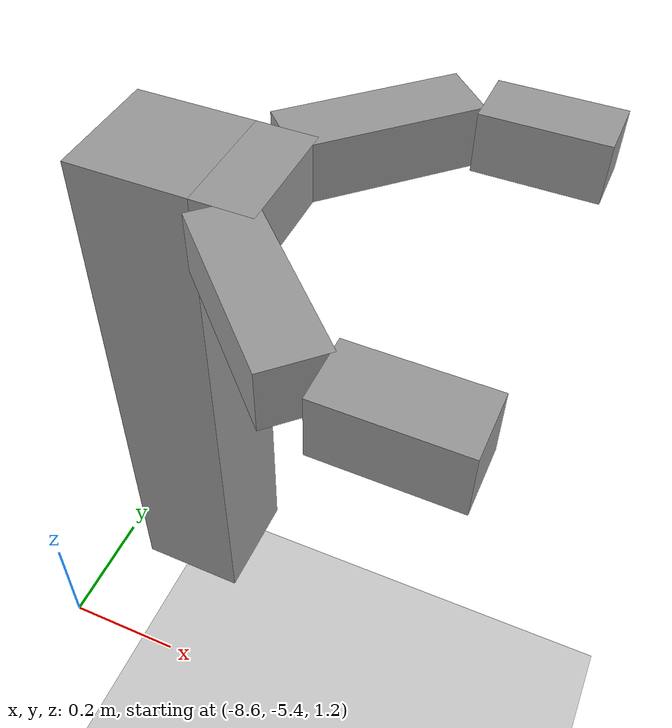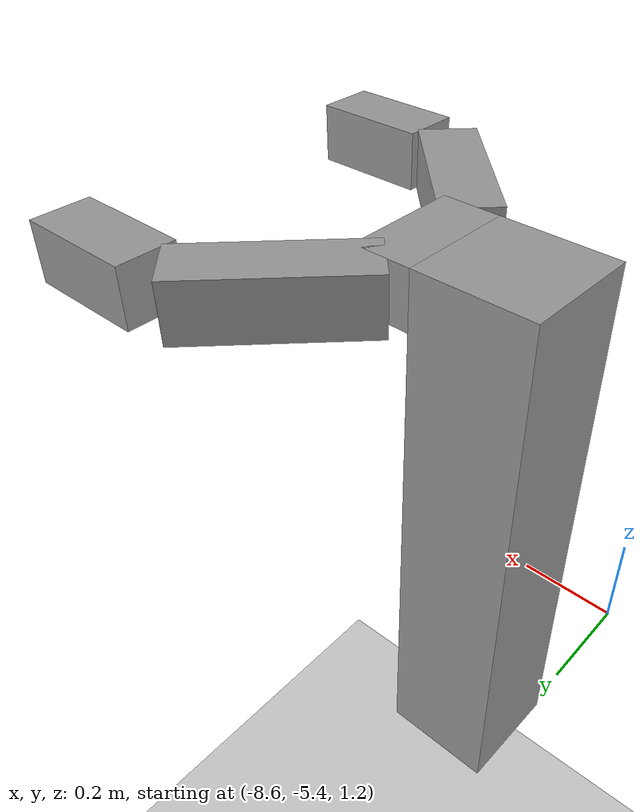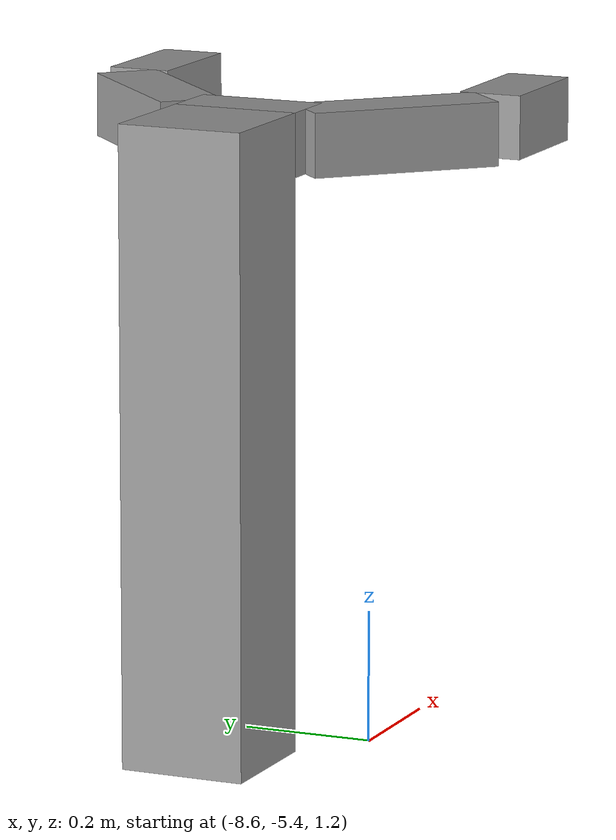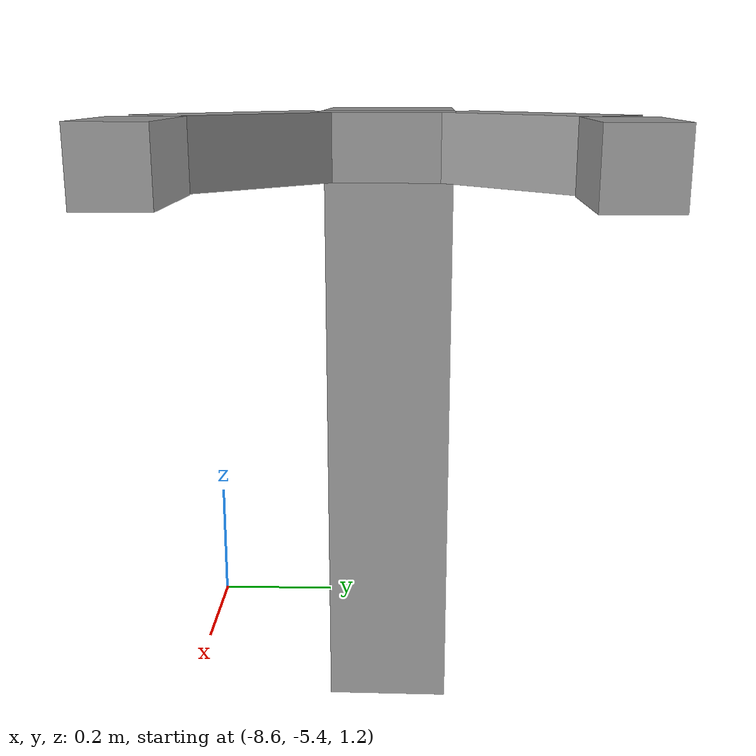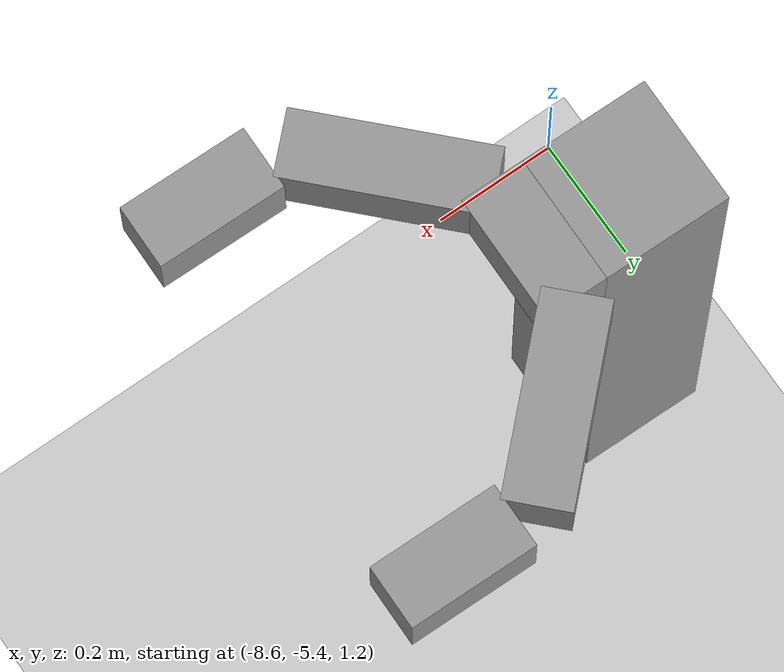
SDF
<sdf version="1.6">
 <world name="default">
  <model name="ground_plane">
   <static>1</static>
   <link name="link">
    <collision name="collision">
     <geometry><plane><normal>0 0 1</normal><size>100 100</size></plane></geometry>
     <surface>
      <contact><collide_bitmask>65535</collide_bitmask></contact>
      <friction><ode><mu>100</mu><mu2>50</mu2></ode></friction>
     </surface>
    </collision>
    <visual name="visual">
     <cast_shadows>0</cast_shadows>
     <geometry><plane><normal>0 0 1</normal><size>100 100</size></plane></geometry>
     <material>
      <script><uri>file://media/materials/scripts/gazebo.material</uri><name>Gazebo/Grey</name></script>
     </material>
    </visual>
   </link>
  </model>
  <model name="RobotGripper">
   <link name="link_0">
    <pose>-0.270333 0 -0.375 0 -0 0</pose>
    <inertial>
     <mass>1</mass>
     <inertia>
      <ixx>0.166667</ixx>
      <ixy>0</ixy>
      <ixz>0</ixz>
      <iyy>0.166667</iyy>
      <iyz>0</iyz>
      <izz>0.166667</izz>
     </inertia>
     <pose>0 0 -0.5 0 -0 0</pose>
    </inertial>
    <visual name="visual">
     <geometry><box><size>0.2 0.2 1</size></box></geometry>
     <material>
      <lighting>1</lighting>
      <script><uri>file://media/materials/scripts/gazebo.material</uri><name>Gazebo/Grey</name></script>
      <shader type="pixel"><normal_map>__default__</normal_map></shader>
      <ambient>0.3 0.3 0.3 1</ambient>
      <diffuse>0.7 0.7 0.7 1</diffuse>
      <specular>0.01 0.01 0.01 1</specular>
      <emissive>0 0 0 1</emissive>
     </material>
    </visual>
    <collision name="collision">
     <geometry><box><size>0.2 0.2 1</size></box></geometry>
     <surface>
      <friction>
       <ode><mu>1</mu><mu2>1</mu2><fdir1>0 0 0</fdir1><slip1>0</slip1><slip2>0</slip2></ode>
       <torsional>
        <coefficient>1</coefficient>
        <patch_radius>0</patch_radius>
        <surface_radius>0</surface_radius>
        <use_patch_radius>1</use_patch_radius>
        <ode><slip>0</slip></ode>
       </torsional>
      </friction>
      <bounce><restitution_coefficient>0</restitution_coefficient><threshold>1e+06</threshold></bounce>
      <contact>
       <collide_without_contact>0</collide_without_contact>
       <collide_without_contact_bitmask>1</collide_without_contact_bitmask>
       <collide_bitmask>1</collide_bitmask>
       <ode>
        <soft_cfm>0</soft_cfm>
        <soft_erp>0.2</soft_erp>
        <kp>1e+13</kp>
        <kd>1</kd>
        <max_vel>0.01</max_vel>
        <min_depth>0</min_depth>
       </ode>
       <bullet>
        <split_impulse>1</split_impulse>
        <split_impulse_penetration_threshold>-0.01</split_impulse_penetration_threshold>
        <soft_cfm>0</soft_cfm>
        <soft_erp>0.2</soft_erp>
        <kp>1e+13</kp>
        <kd>1</kd>
       </bullet>
      </contact>
     </surface>
    </collision>
   </link>
   <link name="link_1">
    <pose>-0.120333 0 0.075 0 -0 0</pose>
    <inertial>
     <mass>1</mass>
     <inertia>
      <ixx>0.166667</ixx>
      <ixy>0</ixy>
      <ixz>0</ixz>
      <iyy>0.166667</iyy>
      <iyz>0</iyz>
      <izz>0.166667</izz>
     </inertia>
    </inertial>
    <visual name="visual">
     <geometry><box><size>0.1 0.2 0.1</size></box></geometry>
     <material>
      <lighting>1</lighting>
      <script><uri>file://media/materials/scripts/gazebo.material</uri><name>Gazebo/Grey</name></script>
      <shader type="pixel"><normal_map>__default__</normal_map></shader>
      <ambient>0.3 0.3 0.3 1</ambient>
      <diffuse>0.7 0.7 0.7 1</diffuse>
      <specular>0.01 0.01 0.01 1</specular>
      <emissive>0 0 0 1</emissive>
     </material>
    </visual>
    <collision name="collision">
     <geometry><box><size>0.1 0.2 0.1</size></box></geometry>
     <surface>
      <friction>
       <ode><mu>1</mu><mu2>1</mu2><fdir1>0 0 0</fdir1><slip1>0</slip1><slip2>0</slip2></ode>
       <torsional>
        <coefficient>1</coefficient>
        <patch_radius>0</patch_radius>
        <surface_radius>0</surface_radius>
        <use_patch_radius>1</use_patch_radius>
        <ode><slip>0</slip></ode>
       </torsional>
      </friction>
      <bounce><restitution_coefficient>0</restitution_coefficient><threshold>1e+06</threshold></bounce>
      <contact>
       <collide_without_contact>0</collide_without_contact>
       <collide_without_contact_bitmask>1</collide_without_contact_bitmask>
       <collide_bitmask>1</collide_bitmask>
       <ode>
        <soft_cfm>0</soft_cfm>
        <soft_erp>0.2</soft_erp>
        <kp>1e+13</kp>
        <kd>1</kd>
        <max_vel>0.01</max_vel>
        <min_depth>0</min_depth>
       </ode>
       <bullet>
        <split_impulse>1</split_impulse>
        <split_impulse_penetration_threshold>-0.01</split_impulse_penetration_threshold>
        <soft_cfm>0</soft_cfm>
        <soft_erp>0.2</soft_erp>
        <kp>1e+13</kp>
        <kd>1</kd>
       </bullet>
      </contact>
     </surface>
    </collision>
   </link>
   <link name="link_2">
    <pose>-0.020333 0.2 0.075 0 0 -0.78539</pose>
    <inertial>
     <mass>1</mass>
     <inertia>
      <ixx>0.166667</ixx>
      <ixy>0</ixy>
      <ixz>0</ixz>
      <iyy>0.166667</iyy>
      <iyz>0</iyz>
      <izz>0.166667</izz>
     </inertia>
    </inertial>
    <visual name="visual">
     <geometry><box><size>0.1 0.3 0.1</size></box></geometry>
     <material>
      <lighting>1</lighting>
      <script><uri>file://media/materials/scripts/gazebo.material</uri><name>Gazebo/Grey</name></script>
      <shader type="pixel"><normal_map>__default__</normal_map></shader>
      <ambient>0.3 0.3 0.3 1</ambient>
      <diffuse>0.7 0.7 0.7 1</diffuse>
      <specular>0.01 0.01 0.01 1</specular>
      <emissive>0 0 0 1</emissive>
     </material>
    </visual>
    <collision name="collision">
     <geometry><box><size>0.1 0.3 0.1</size></box></geometry>
     <surface>
      <friction>
       <ode><mu>1</mu><mu2>1</mu2><fdir1>0 0 0</fdir1><slip1>0</slip1><slip2>0</slip2></ode>
       <torsional>
        <coefficient>1</coefficient>
        <patch_radius>0</patch_radius>
        <surface_radius>0</surface_radius>
        <use_patch_radius>1</use_patch_radius>
        <ode><slip>0</slip></ode>
       </torsional>
      </friction>
      <bounce><restitution_coefficient>0</restitution_coefficient><threshold>1e+06</threshold></bounce>
      <contact>
       <collide_without_contact>0</collide_without_contact>
       <collide_without_contact_bitmask>1</collide_without_contact_bitmask>
       <collide_bitmask>1</collide_bitmask>
       <ode>
        <soft_cfm>0</soft_cfm>
        <soft_erp>0.2</soft_erp>
        <kp>1e+13</kp>
        <kd>1</kd>
        <max_vel>0.01</max_vel>
        <min_depth>0</min_depth>
       </ode>
       <bullet>
        <split_impulse>1</split_impulse>
        <split_impulse_penetration_threshold>-0.01</split_impulse_penetration_threshold>
        <soft_cfm>0</soft_cfm>
        <soft_erp>0.2</soft_erp>
        <kp>1e+13</kp>
        <kd>1</kd>
       </bullet>
      </contact>
     </surface>
    </collision>
   </link>
   <link name="link_2_clone">
    <pose>-0.020333 -0.2 0.075 0 -0 0.78539</pose>
    <inertial>
     <mass>1</mass>
     <inertia>
      <ixx>0.166667</ixx>
      <ixy>0</ixy>
      <ixz>0</ixz>
      <iyy>0.166667</iyy>
      <iyz>0</iyz>
      <izz>0.166667</izz>
     </inertia>
    </inertial>
    <visual name="visual">
     <geometry><box><size>0.1 0.3 0.1</size></box></geometry>
     <material>
      <lighting>1</lighting>
      <script><uri>file://media/materials/scripts/gazebo.material</uri><name>Gazebo/Grey</name></script>
      <shader type="pixel"><normal_map>__default__</normal_map></shader>
      <ambient>0.3 0.3 0.3 1</ambient>
      <diffuse>0.7 0.7 0.7 1</diffuse>
      <specular>0.01 0.01 0.01 1</specular>
      <emissive>0 0 0 1</emissive>
     </material>
    </visual>
    <collision name="collision">
     <geometry><box><size>0.1 0.3 0.1</size></box></geometry>
     <surface>
      <friction>
       <ode><mu>1</mu><mu2>1</mu2><fdir1>0 0 0</fdir1><slip1>0</slip1><slip2>0</slip2></ode>
       <torsional>
        <coefficient>1</coefficient>
        <patch_radius>0</patch_radius>
        <surface_radius>0</surface_radius>
        <use_patch_radius>1</use_patch_radius>
        <ode><slip>0</slip></ode>
       </torsional>
      </friction>
      <bounce><restitution_coefficient>0</restitution_coefficient><threshold>1e+06</threshold></bounce>
      <contact>
       <collide_without_contact>0</collide_without_contact>
       <collide_without_contact_bitmask>1</collide_without_contact_bitmask>
       <collide_bitmask>1</collide_bitmask>
       <ode>
        <soft_cfm>0</soft_cfm>
        <soft_erp>0.2</soft_erp>
        <kp>1e+13</kp>
        <kd>1</kd>
        <max_vel>0.01</max_vel>
        <min_depth>0</min_depth>
       </ode>
       <bullet>
        <split_impulse>1</split_impulse>
        <split_impulse_penetration_threshold>-0.01</split_impulse_penetration_threshold>
        <soft_cfm>0</soft_cfm>
        <soft_erp>0.2</soft_erp>
        <kp>1e+13</kp>
        <kd>1</kd>
       </bullet>
      </contact>
     </surface>
    </collision>
   </link>
   <link name="link_3">
    <pose>0.215667 0.3 0.075 0 -0 1.5707</pose>
    <inertial>
     <mass>1</mass>
     <inertia>
      <ixx>0.166667</ixx>
      <ixy>0</ixy>
      <ixz>0</ixz>
      <iyy>0.166667</iyy>
      <iyz>0</iyz>
      <izz>0.166667</izz>
     </inertia>
    </inertial>
    <visual name="visual">
     <geometry><box><size>0.1 0.2 0.1</size></box></geometry>
     <material>
      <lighting>1</lighting>
      <script><uri>file://media/materials/scripts/gazebo.material</uri><name>Gazebo/Grey</name></script>
      <shader type="pixel"><normal_map>__default__</normal_map></shader>
      <ambient>0.3 0.3 0.3 1</ambient>
      <diffuse>0.7 0.7 0.7 1</diffuse>
      <specular>0.01 0.01 0.01 1</specular>
      <emissive>0 0 0 1</emissive>
     </material>
    </visual>
    <collision name="collision">
     <geometry><box><size>0.1 0.2 0.1</size></box></geometry>
     <surface>
      <friction>
       <ode><mu>1</mu><mu2>1</mu2><fdir1>0 0 0</fdir1><slip1>0</slip1><slip2>0</slip2></ode>
       <torsional>
        <coefficient>1</coefficient>
        <patch_radius>0</patch_radius>
        <surface_radius>0</surface_radius>
        <use_patch_radius>1</use_patch_radius>
        <ode><slip>0</slip></ode>
       </torsional>
      </friction>
      <bounce><restitution_coefficient>0</restitution_coefficient><threshold>1e+06</threshold></bounce>
      <contact>
       <collide_without_contact>0</collide_without_contact>
       <collide_without_contact_bitmask>1</collide_without_contact_bitmask>
       <collide_bitmask>1</collide_bitmask>
       <ode>
        <soft_cfm>0</soft_cfm>
        <soft_erp>0.2</soft_erp>
        <kp>1e+13</kp>
        <kd>1</kd>
        <max_vel>0.01</max_vel>
        <min_depth>0</min_depth>
       </ode>
       <bullet>
        <split_impulse>1</split_impulse>
        <split_impulse_penetration_threshold>-0.01</split_impulse_penetration_threshold>
        <soft_cfm>0</soft_cfm>
        <soft_erp>0.2</soft_erp>
        <kp>1e+13</kp>
        <kd>1</kd>
       </bullet>
      </contact>
     </surface>
    </collision>
   </link>
   <link name="link_3_clone">
    <pose>0.215667 -0.3 0.075 0 -0 1.5707</pose>
    <inertial>
     <mass>1</mass>
     <inertia>
      <ixx>0.166667</ixx>
      <ixy>0</ixy>
      <ixz>0</ixz>
      <iyy>0.166667</iyy>
      <iyz>0</iyz>
      <izz>0.166667</izz>
     </inertia>
    </inertial>
    <visual name="visual">
     <geometry><box><size>0.1 0.2 0.1</size></box></geometry>
     <material>
      <lighting>1</lighting>
      <script><uri>file://media/materials/scripts/gazebo.material</uri><name>Gazebo/Grey</name></script>
      <shader type="pixel"><normal_map>__default__</normal_map></shader>
      <ambient>0.3 0.3 0.3 1</ambient>
      <diffuse>0.7 0.7 0.7 1</diffuse>
      <specular>0.01 0.01 0.01 1</specular>
      <emissive>0 0 0 1</emissive>
     </material>
    </visual>
    <collision name="collision">
     <geometry><box><size>0.1 0.2 0.1</size></box></geometry>
     <surface>
      <friction>
       <ode><mu>1</mu><mu2>1</mu2><fdir1>0 0 0</fdir1><slip1>0</slip1><slip2>0</slip2></ode>
       <torsional>
        <coefficient>1</coefficient>
        <patch_radius>0</patch_radius>
        <surface_radius>0</surface_radius>
        <use_patch_radius>1</use_patch_radius>
        <ode><slip>0</slip></ode>
       </torsional>
      </friction>
      <bounce><restitution_coefficient>0</restitution_coefficient><threshold>1e+06</threshold></bounce>
      <contact>
       <collide_without_contact>0</collide_without_contact>
       <collide_without_contact_bitmask>1</collide_without_contact_bitmask>
       <collide_bitmask>1</collide_bitmask>
       <ode>
        <soft_cfm>0</soft_cfm>
        <soft_erp>0.2</soft_erp>
        <kp>1e+13</kp>
        <kd>1</kd>
        <max_vel>0.01</max_vel>
        <min_depth>0</min_depth>
       </ode>
       <bullet>
        <split_impulse>1</split_impulse>
        <split_impulse_penetration_threshold>-0.01</split_impulse_penetration_threshold>
        <soft_cfm>0</soft_cfm>
        <soft_erp>0.2</soft_erp>
        <kp>1e+13</kp>
        <kd>1</kd>
       </bullet>
      </contact>
     </surface>
    </collision>
   </link>
   <joint name="link_0_JOINT_1" type="prismatic">
    <parent>link_0</parent>
    <child>link_1</child>
    <axis>
     <xyz>0 0 1</xyz>
     <use_parent_model_frame>0</use_parent_model_frame>
     <limit>
      <lower>-1.79769e+308</lower>
      <upper>1.79769e+308</upper>
      <effort>-1</effort>
      <velocity>-1</velocity>
     </limit>
     <dynamics>
      <spring_reference>0</spring_reference>
      <spring_stiffness>0</spring_stiffness>
      <damping>0</damping>
     </dynamics>
    </axis>
    <physics>
     <ode><limit><cfm>0</cfm><erp>0.2</erp></limit><suspension><cfm>0</cfm><erp>0.2</erp></suspension></ode>
    </physics>
   </joint>
   <joint name="link_1_JOINT_2" type="revolute">
    <parent>link_1</parent>
    <child>link_2</child>
    <axis>
     <xyz>0 0 1</xyz>
     <use_parent_model_frame>0</use_parent_model_frame>
     <limit>
      <lower>-1.79769e+308</lower>
      <upper>1.79769e+308</upper>
      <effort>-1</effort>
      <velocity>-1</velocity>
     </limit>
     <dynamics>
      <spring_reference>0</spring_reference>
      <spring_stiffness>0</spring_stiffness>
      <damping>0</damping>
     </dynamics>
    </axis>
    <physics>
     <ode><limit><cfm>0</cfm><erp>0.2</erp></limit><suspension><cfm>0</cfm><erp>0.2</erp></suspension></ode>
    </physics>
   </joint>
   <joint name="link_1_JOINT_3" type="revolute">
    <parent>link_1</parent>
    <child>link_2_clone</child>
    <axis>
     <xyz>0 0 1</xyz>
     <use_parent_model_frame>0</use_parent_model_frame>
     <limit>
      <lower>-1.79769e+308</lower>
      <upper>1.79769e+308</upper>
      <effort>-1</effort>
      <velocity>-1</velocity>
     </limit>
     <dynamics>
      <spring_reference>0</spring_reference>
      <spring_stiffness>0</spring_stiffness>
      <damping>0</damping>
     </dynamics>
    </axis>
    <physics>
     <ode><limit><cfm>0</cfm><erp>0.2</erp></limit><suspension><cfm>0</cfm><erp>0.2</erp></suspension></ode>
    </physics>
   </joint>
   <joint name="link_2_JOINT_4" type="revolute">
    <parent>link_2</parent>
    <child>link_3</child>
    <axis>
     <xyz>0 0 1</xyz>
     <use_parent_model_frame>0</use_parent_model_frame>
     <limit>
      <lower>-1.79769e+308</lower>
      <upper>1.79769e+308</upper>
      <effort>-1</effort>
      <velocity>-1</velocity>
     </limit>
     <dynamics>
      <spring_reference>0</spring_reference>
      <spring_stiffness>0</spring_stiffness>
      <damping>0</damping>
     </dynamics>
    </axis>
    <physics>
     <ode><limit><cfm>0</cfm><erp>0.2</erp></limit><suspension><cfm>0</cfm><erp>0.2</erp></suspension></ode>
    </physics>
   </joint>
   <joint name="link_2_clone_JOINT_5" type="revolute">
    <parent>link_2_clone</parent>
    <child>link_3_clone</child>
    <axis>
     <xyz>0 0 1</xyz>
     <use_parent_model_frame>0</use_parent_model_frame>
     <limit>
      <lower>-1.79769e+308</lower>
      <upper>1.79769e+308</upper>
      <effort>-1</effort>
      <velocity>-1</velocity>
     </limit>
     <dynamics>
      <spring_reference>0</spring_reference>
      <spring_stiffness>0</spring_stiffness>
      <damping>0</damping>
     </dynamics>
    </axis>
    <physics>
     <ode><limit><cfm>0</cfm><erp>0.2</erp></limit><suspension><cfm>0</cfm><erp>0.2</erp></suspension></ode>
    </physics>
   </joint>
   <static>0</static>
   <pose>-8.20907 -5.08637 1.97809 -1e-06 9e-06 -0.01258</pose>
  </model>
 </world>
</sdf>
